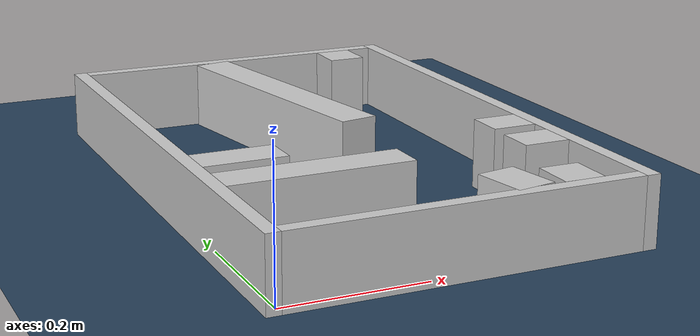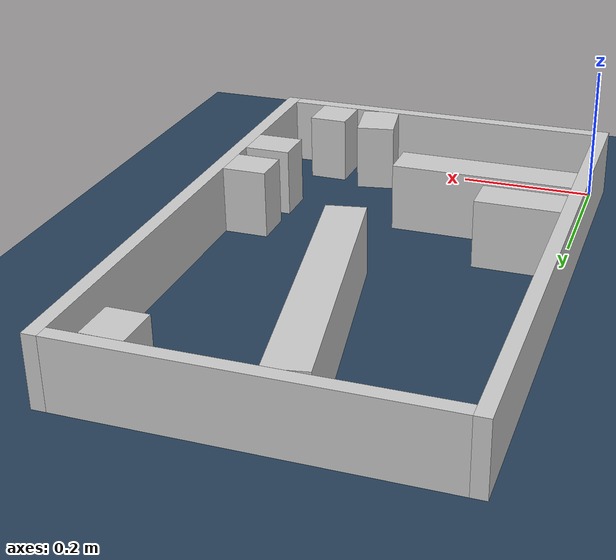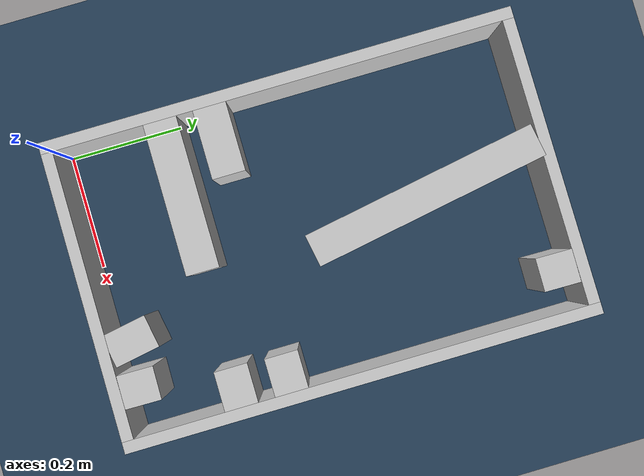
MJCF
<?xml version="1.0" ?>
<mujoco model="generated_real_template">
  <compiler angle="degree"/>
  <option timestep="0.002" integrator="implicitfast" iterations="100" cone="elliptic"/>
  <default>
    <geom density="1"/>
  </default>
  <asset>
    <texture builtin="gradient" height="3072" rgb1="0.3 0.5 0.7" rgb2="0 0 0" type="skybox" width="512"/>
    <texture builtin="checker" height="300" mark="edge" markrgb="0.8 0.8 0.8" name="groundplane" rgb1="0.2 0.3 0.4" rgb2="0.1 0.2 0.3" type="2d" width="300"/>
    <material name="groundplane" reflectance="0.2" texrepeat="5 5" texture="groundplane" texuniform="true"/>
  </asset>
  <worldbody>
    <light dir="0 0 -1" directional="true" pos="0 0 1.5"/>
    <geom name="floor" type="plane" condim="4" friction="0.5 0.005 0.001" material="groundplane" size="0 0 0.05"/>
    <body name="walls">
      <geom name="wall_boundary_left" type="box" condim="4" friction="1.0 0.005 0.0001" rgba="0.8 0.8 0.8 1" pos="-0.010000 0.387500 0.050000" euler="0 0 0.000000" size="0.010000 0.407500 0.050000"/>
      <geom name="wall_boundary_right" type="box" condim="4" friction="1.0 0.005 0.0001" rgba="0.8 0.8 0.8 1" pos="0.500000 0.387500 0.050000" euler="0 0 0.000000" size="0.010000 0.407500 0.050000"/>
      <geom name="wall_boundary_bottom" type="box" condim="4" friction="1.0 0.005 0.0001" rgba="0.8 0.8 0.8 1" pos="0.245000 -0.010000 0.050000" euler="0 0 0.000000" size="0.245000 0.010000 0.050000"/>
      <geom name="wall_boundary_top" type="box" condim="4" friction="1.0 0.005 0.0001" rgba="0.8 0.8 0.8 1" pos="0.245000 0.785000 0.050000" euler="0 0 0.000000" size="0.245000 0.010000 0.050000"/>
      <geom name="wall_inner_1_1" type="box" condim="4" friction="1.0 0.005 0.0001" rgba="0.8 0.8 0.8 1" pos="0.412533 0.031089 0.050000" euler="0 0 89.277677" size="0.031092 0.028500 0.050000"/>
      <geom name="wall_inner_1_2" type="box" condim="4" friction="1.0 0.005 0.0001" rgba="0.8 0.8 0.8 1" pos="0.421518 0.743756 0.050000" euler="0 0 89.277677" size="0.031247 0.028500 0.050000"/>
      <geom name="wall_inner_2_1" type="box" condim="4" friction="1.0 0.005 0.0001" rgba="0.8 0.8 0.8 1" pos="0.059514 0.268631 0.050000" euler="0 0 0.000000" size="0.059514 0.028500 0.050000"/>
      <geom name="wall_inner_2_2" type="box" condim="4" friction="1.0 0.005 0.0001" rgba="0.8 0.8 0.8 1" pos="0.457728 0.268631 0.050000" euler="0 0 0.000000" size="0.032272 0.028500 0.050000"/>
      <geom name="wall_inner_3_1" type="box" condim="4" friction="1.0 0.005 0.0001" rgba="0.8 0.8 0.8 1" pos="0.242058 0.570425 0.050000" euler="0 0 -79.975965" size="0.207746 0.028500 0.050000"/>
      <geom name="wall_inner_3_2" type="box" condim="4" friction="1.0 0.005 0.0001" rgba="0.8 0.8 0.8 1" pos="0.336120 0.038279 0.050000" euler="0 0 -79.975965" size="0.038873 0.028500 0.050000"/>
      <geom name="wall_inner_4_1" type="box" condim="4" friction="1.0 0.005 0.0001" rgba="0.8 0.8 0.8 1" pos="0.130032 0.183354 0.050000" euler="0 0 0.000000" size="0.130032 0.028500 0.050000"/>
      <geom name="wall_inner_4_2" type="box" condim="4" friction="1.0 0.005 0.0001" rgba="0.8 0.8 0.8 1" pos="0.456402 0.183354 0.050000" euler="0 0 0.000000" size="0.033598 0.028500 0.050000"/>
    </body>
  </worldbody>
</mujoco>
